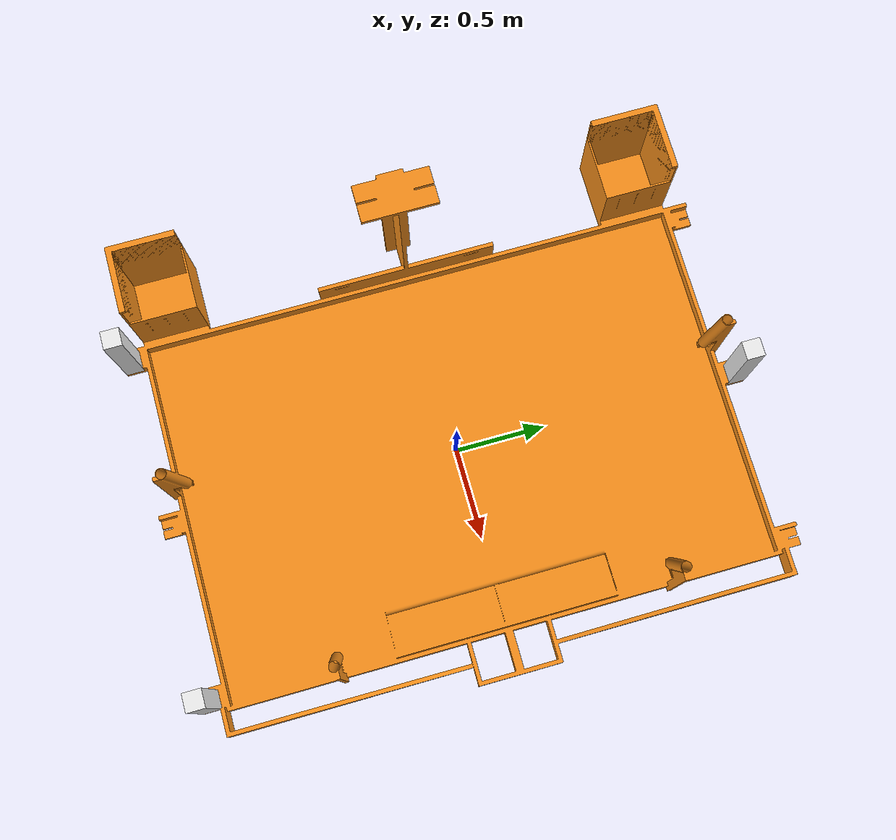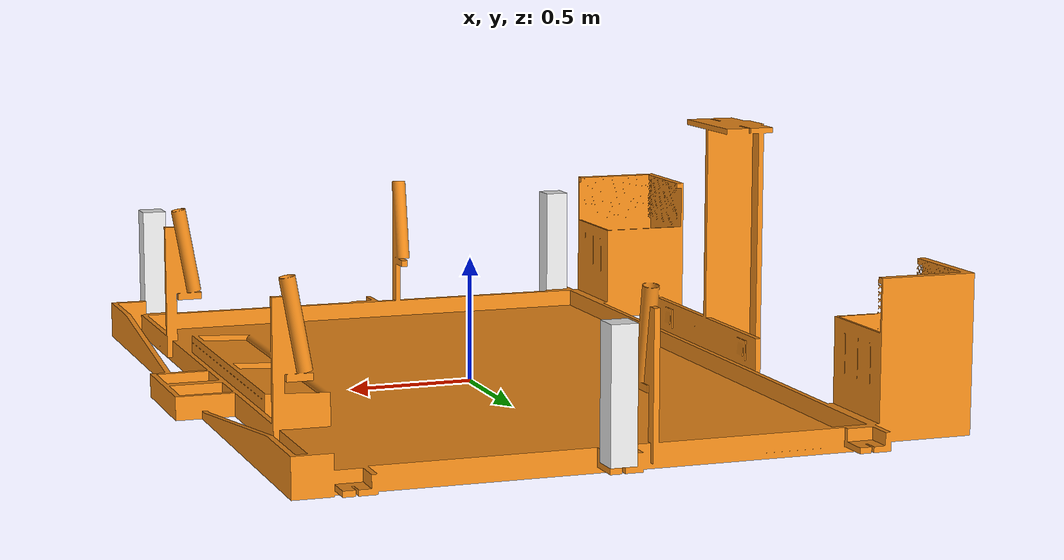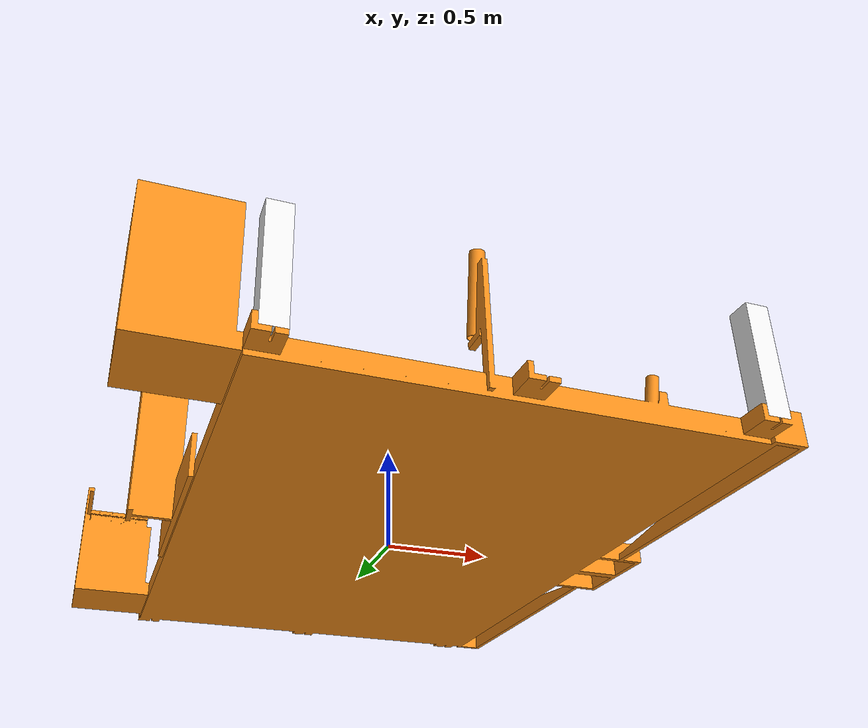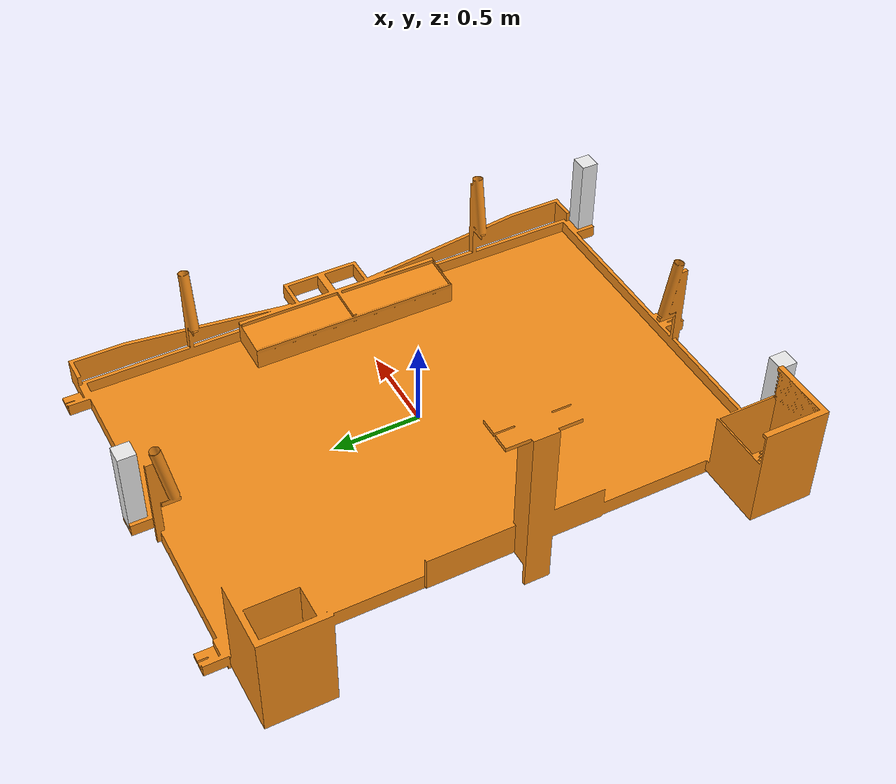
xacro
<?xml version="1.0"?>
<robot name="robot_cities_2018" xmlns:xacro="http://ros.org/wiki/xacro">
	<xacro:property name="world_laser_retro" value="10.0"/>

    <xacro:property name="beacon_width" value="0.1" />
    <xacro:property name="beacon_height" value="0.5" />
	<xacro:property name="beacon_laser_retro" value="100.0"/>
	<xacro:property name="beacon_side" value="1"/>

    <link name="world"/>

	<link name="robot_cities_2018">
		<visual>
			<geometry>
				<mesh filename="package://starbaby_gazebo/meshes/RobotCities-2018-full.stl" scale="0.001 0.001 0.001"/>
			</geometry>
    		<origin xyz="-1.022 -1.522 0.0" rpy="${pi/ 2} 0 ${pi/ 2}"/>
		</visual>
		<collision>
			<geometry>
				<mesh filename="package://starbaby_gazebo/meshes/RobotCities-2018-full.stl" scale="0.001 0.001 0.001"/>
			</geometry>
    		<origin xyz="-1.022 -1.522 0.0" rpy="${pi/ 2} 0 ${pi/ 2}"/>
    		<laser_retro>${world_laser_retro}</laser_retro>
		</collision>
        <inertial>
			<mass value="100.0"/>
			<inertia ixx="1" ixy="0.0" ixz="0.0" iyy="1" iyz="0.0" izz="1"/>
        </inertial>
	</link>

	<gazebo reference="robot_cities_2018">
		<mu1>Inf</mu1>
		<mu2>Inf</mu2>
		<material>Gazebo/Orange</material>
		<static>true</static>
		<visual>
    		<laser_retro>${world_laser_retro}</laser_retro>
		</visual>
		<collision>
    		<laser_retro>${world_laser_retro}</laser_retro>
		</collision>
	</gazebo>

    <joint name="world_to_robot_cities_2018" type="fixed">
	    <parent link="world"/>
	    <child link="robot_cities_2018"/>
    	<origin xyz="0 0 0" rpy="0 0 0"/>
	</joint>

	<xacro:macro name="beacon" params="beacon_name beacon_x beacon_y">
		<link name="${beacon_name}">
			<visual>
	            <geometry>
	                <box size="${beacon_width} ${beacon_width} ${beacon_height}"/>
	            </geometry>
	    		<origin xyz="0 0 ${beacon_height/2}" rpy="0 0 0"/>
	            <material name="white"/>
			</visual>
			<collision>
	            <geometry>
	                <box size="${beacon_width} ${beacon_width} ${beacon_height}"/>
	            </geometry>
	    		<origin xyz="0 0 ${beacon_height/2}" rpy="0 0 0"/>
			</collision>
	        <inertial>
				<mass value="0.3"/>
				<inertia ixx="2e-4" ixy="0.0" ixz="0.0" iyy="2e-4" iyz="0.0" izz="2.5e-4"/>
	        </inertial>
        </link>

        <joint name="robot_cities_2018_to_${beacon_name}" type="fixed">
		    <parent link="world"/>
		    <child link="${beacon_name}"/>
	    	<origin xyz="${beacon_x} ${beacon_y} 0.022" rpy="0 0 0"/>
		</joint>

		<gazebo reference="${beacon_name}">
			<material>Gazebo/White</material>
			<visual>
	    		<laser_retro>${beacon_laser_retro}</laser_retro>
			</visual>
			<collision>
	    		<laser_retro>${beacon_laser_retro}</laser_retro>
			</collision>
		</gazebo>
	</xacro:macro>

	<beacon beacon_name="beacon_1" beacon_x="-0.95" beacon_y="${beacon_side * -1.594}"/>
	<beacon beacon_name="beacon_2" beacon_x="0.0" beacon_y="${beacon_side * 1.594}"/>
	<beacon beacon_name="beacon_3" beacon_x="0.95" beacon_y="${beacon_side * -1.594}"/>
</robot>
